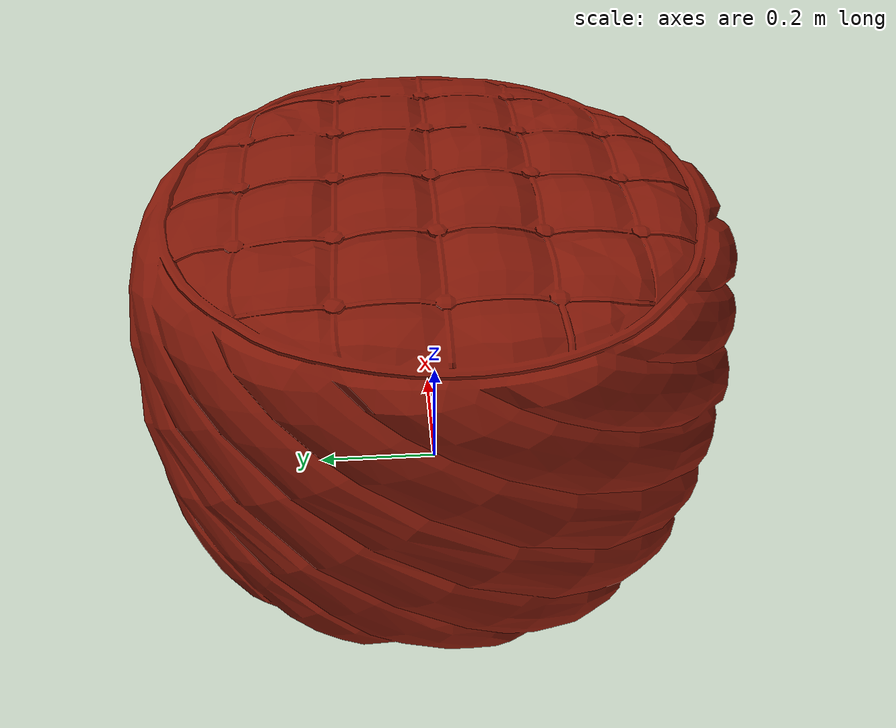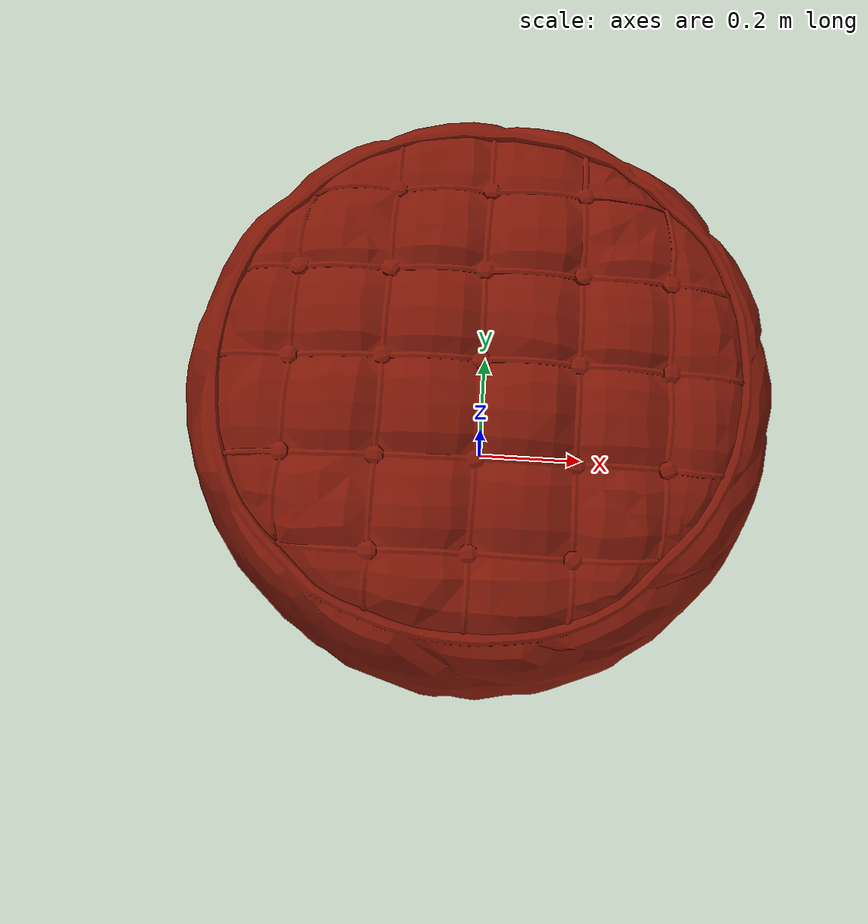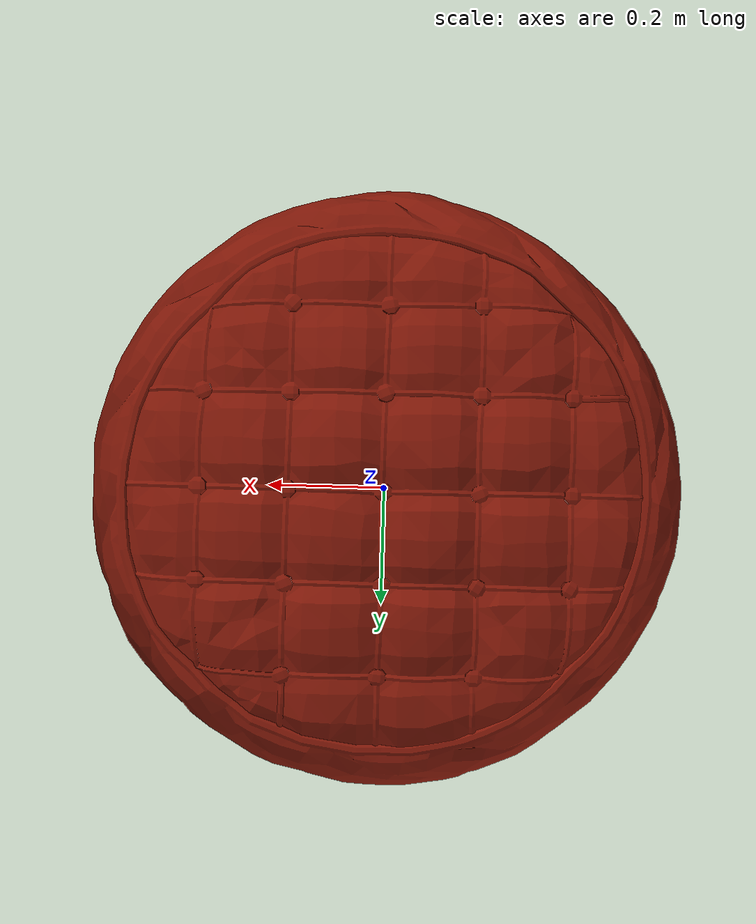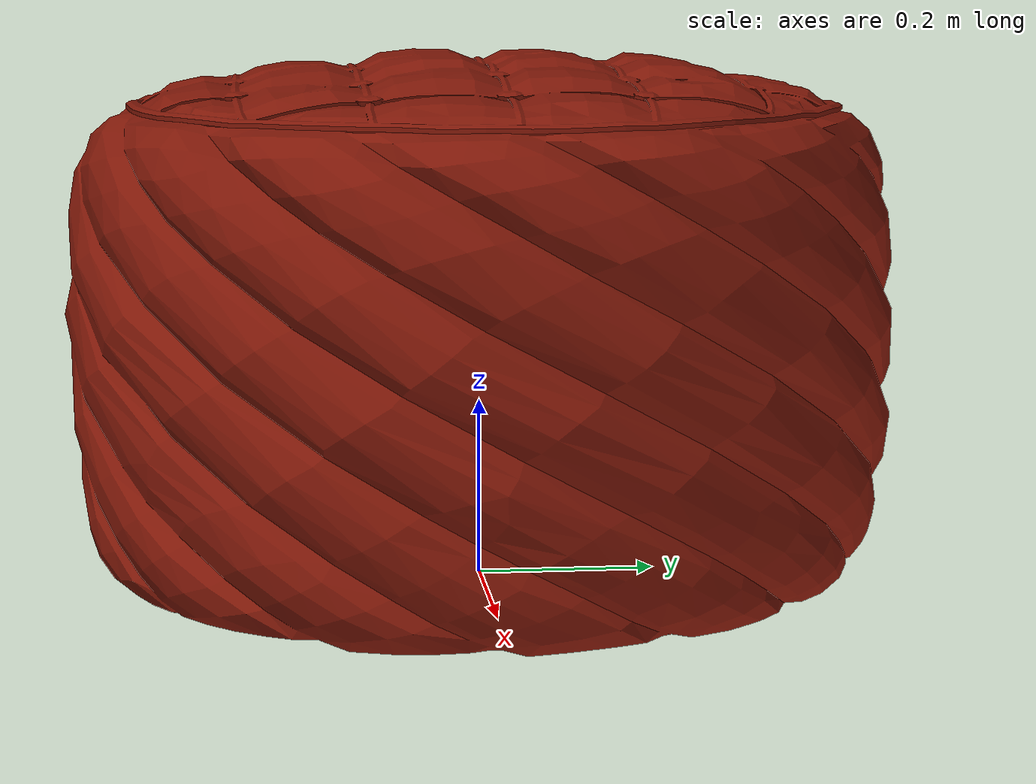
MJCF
<mujoco model="pouf">
  <default>
    <default class="visual">
      <geom group="2" type="mesh" contype="0" conaffinity="0"/>
    </default>
    <default class="collision">
      <geom group="3" type="mesh"/>
    </default>
  </default>
  <asset>
    <material name="default.002" specular="0.287824" shininess="0.5" rgba="0.510793 0.093856 0.033119 1.000000"/>
    <mesh file="pouf.obj"/>
  </asset>
  <worldbody>
    <body name="pouf">
      <geom material="default.002" mesh="pouf" class="visual"/>
      <geom mesh="pouf" class="collision"/>
    </body>
  </worldbody>
</mujoco>
